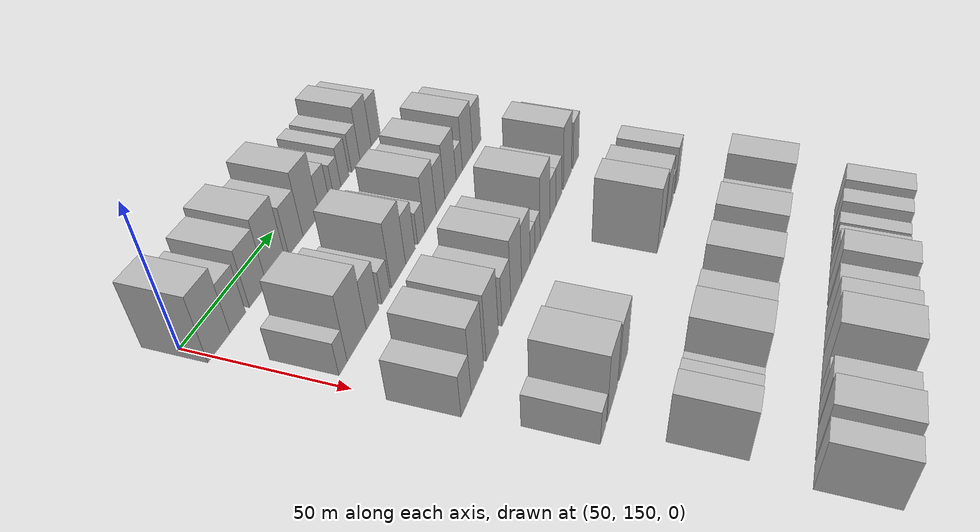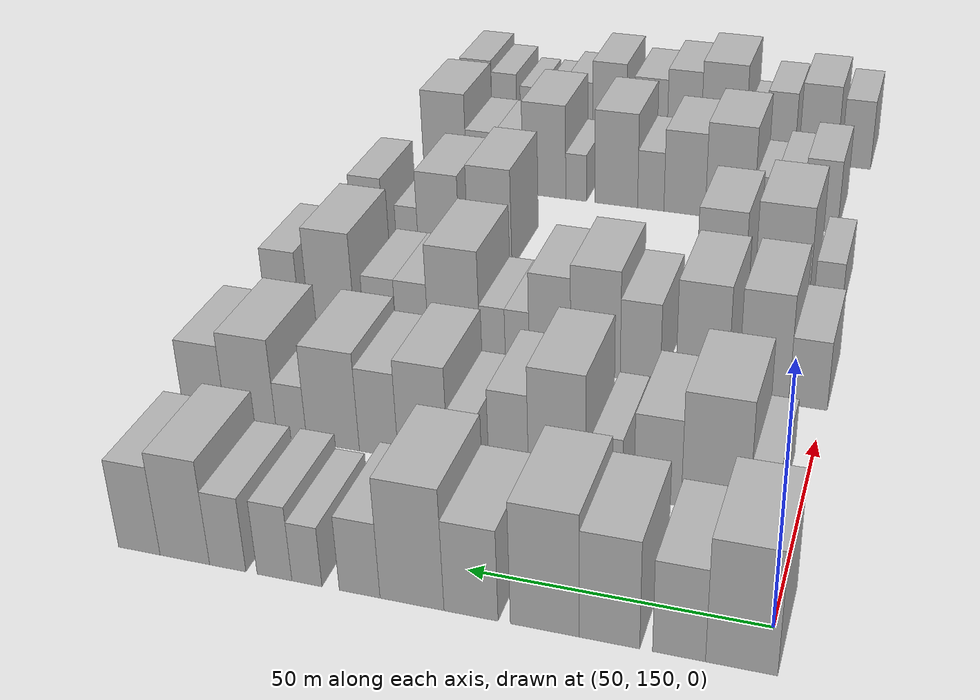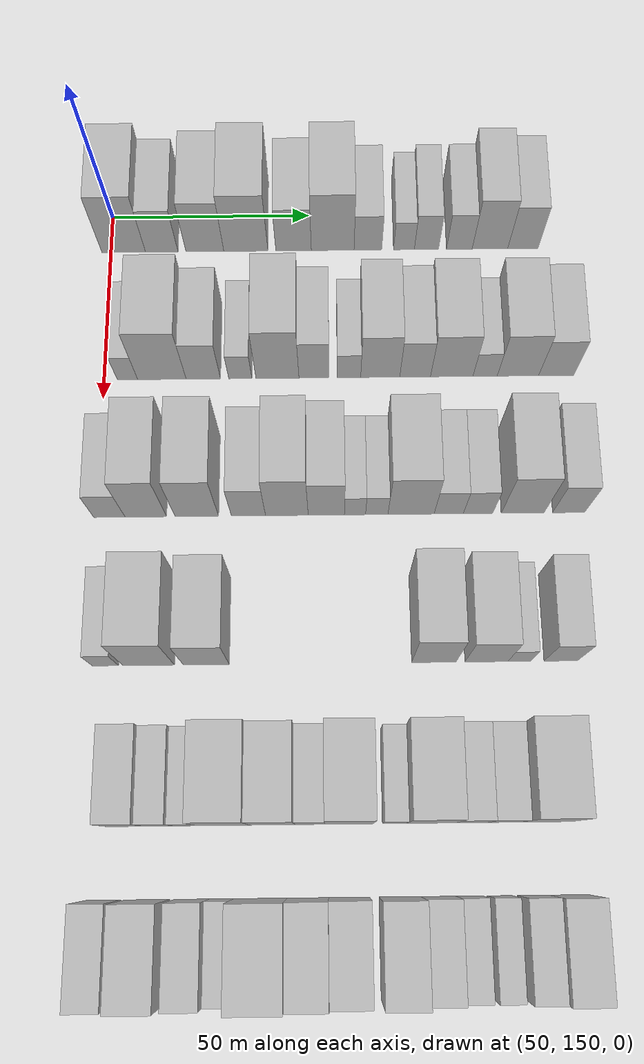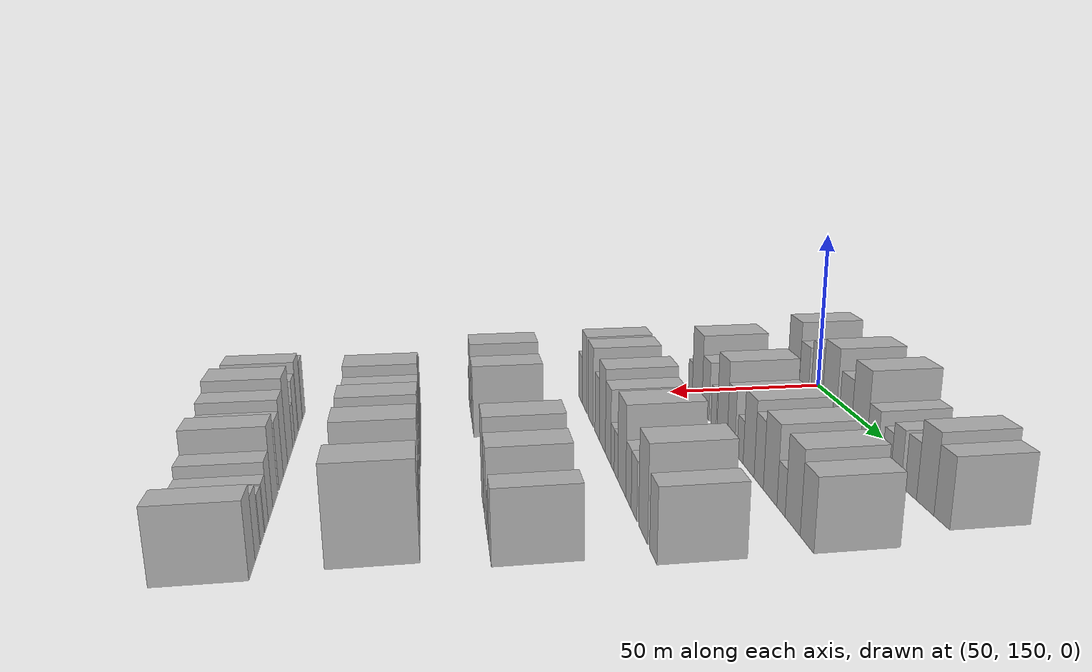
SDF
<sdf version="1.6">
 <world name="default">
  <model name="building_81">
   <static>1</static>
   <pose>50.0000 153.2220 0 0.000000 0.000000 0.000000</pose>
   <link name="link">
    <pose>0 0 12.00 0 0 0</pose>
    <collision name="collision"><geometry><box><size>20.0000 10.9884 24.0000</size></box></geometry></collision>
    <visual name="visual">
     <cast_shadows>0</cast_shadows>
     <geometry><box><size>20.0000 10.9884 24.0000</size></box></geometry>
     <material>
      <script>
       <uri>model://HANNAS_wall/materials/scripts</uri>
       <uri>model://HANNAS_wall/materials/textures</uri>
       <name>vrc/HANNAS_wall</name>
      </script>
     </material>
    </visual>
   </link>
  </model>
  <model name="building_82">
   <static>1</static>
   <pose>50.0000 162.8130 0 0.000000 0.000000 0.000000</pose>
   <link name="link">
    <pose>0 0 9.00 0 0 0</pose>
    <collision name="collision"><geometry><box><size>20.0000 8.1934 18.0000</size></box></geometry></collision>
    <visual name="visual">
     <cast_shadows>0</cast_shadows>
     <geometry><box><size>20.0000 8.1934 18.0000</size></box></geometry>
     <material>
      <script>
       <uri>model://HANNAS_wall/materials/scripts</uri>
       <uri>model://HANNAS_wall/materials/textures</uri>
       <name>vrc/HANNAS_wall</name>
      </script>
     </material>
    </visual>
   </link>
  </model>
  <model name="building_83">
   <static>1</static>
   <pose>50.0000 173.6807 0 0.000000 0.000000 0.000000</pose>
   <link name="link">
    <pose>0 0 10.50 0 0 0</pose>
    <collision name="collision"><geometry><box><size>20.0000 9.5420 21.0000</size></box></geometry></collision>
    <visual name="visual">
     <cast_shadows>0</cast_shadows>
     <geometry><box><size>20.0000 9.5420 21.0000</size></box></geometry>
     <material>
      <script>
       <uri>model://HANNAS_wall/materials/scripts</uri>
       <uri>model://HANNAS_wall/materials/textures</uri>
       <name>vrc/HANNAS_wall</name>
      </script>
     </material>
    </visual>
   </link>
  </model>
  <model name="building_84">
   <static>1</static>
   <pose>50.0000 184.0219 0 0.000000 0.000000 0.000000</pose>
   <link name="link">
    <pose>0 0 12.00 0 0 0</pose>
    <collision name="collision"><geometry><box><size>20.0000 11.1404 24.0000</size></box></geometry></collision>
    <visual name="visual">
     <cast_shadows>0</cast_shadows>
     <geometry><box><size>20.0000 11.1404 24.0000</size></box></geometry>
     <material>
      <script>
       <uri>model://HANNAS_wall/materials/scripts</uri>
       <uri>model://HANNAS_wall/materials/textures</uri>
       <name>vrc/HANNAS_wall</name>
      </script>
     </material>
    </visual>
   </link>
  </model>
  <model name="building_85">
   <static>1</static>
   <pose>50.0000 196.0605 0 0.000000 0.000000 0.000000</pose>
   <link name="link">
    <pose>0 0 9.00 0 0 0</pose>
    <collision name="collision"><geometry><box><size>20.0000 8.9368 18.0000</size></box></geometry></collision>
    <visual name="visual">
     <cast_shadows>0</cast_shadows>
     <geometry><box><size>20.0000 8.9368 18.0000</size></box></geometry>
     <material>
      <script>
       <uri>model://HANNAS_wall/materials/scripts</uri>
       <uri>model://HANNAS_wall/materials/textures</uri>
       <name>vrc/HANNAS_wall</name>
      </script>
     </material>
    </visual>
   </link>
  </model>
  <model name="building_86">
   <static>1</static>
   <pose>50.0000 205.9209 0 0.000000 0.000000 0.000000</pose>
   <link name="link">
    <pose>0 0 12.00 0 0 0</pose>
    <collision name="collision"><geometry><box><size>20.0000 10.7838 24.0000</size></box></geometry></collision>
    <visual name="visual">
     <cast_shadows>0</cast_shadows>
     <geometry><box><size>20.0000 10.7838 24.0000</size></box></geometry>
     <material>
      <script>
       <uri>model://HANNAS_wall/materials/scripts</uri>
       <uri>model://HANNAS_wall/materials/textures</uri>
       <name>vrc/HANNAS_wall</name>
      </script>
     </material>
    </visual>
   </link>
  </model>
  <model name="building_87">
   <static>1</static>
   <pose>50.0000 214.8019 0 0.000000 0.000000 0.000000</pose>
   <link name="link">
    <pose>0 0 7.50 0 0 0</pose>
    <collision name="collision"><geometry><box><size>20.0000 6.9783 15.0000</size></box></geometry></collision>
    <visual name="visual">
     <cast_shadows>0</cast_shadows>
     <geometry><box><size>20.0000 6.9783 15.0000</size></box></geometry>
     <material>
      <script>
       <uri>model://HANNAS_wall/materials/scripts</uri>
       <uri>model://HANNAS_wall/materials/textures</uri>
       <name>vrc/HANNAS_wall</name>
      </script>
     </material>
    </visual>
   </link>
  </model>
  <model name="building_88">
   <static>1</static>
   <pose>50.0000 223.9112 0 0.000000 0.000000 0.000000</pose>
   <link name="link">
    <pose>0 0 6.00 0 0 0</pose>
    <collision name="collision"><geometry><box><size>20.0000 5.2402 12.0000</size></box></geometry></collision>
    <visual name="visual">
     <cast_shadows>0</cast_shadows>
     <geometry><box><size>20.0000 5.2402 12.0000</size></box></geometry>
     <material>
      <script>
       <uri>model://HANNAS_wall/materials/scripts</uri>
       <uri>model://HANNAS_wall/materials/textures</uri>
       <name>vrc/HANNAS_wall</name>
      </script>
     </material>
    </visual>
   </link>
  </model>
  <model name="building_89">
   <static>1</static>
   <pose>50.0000 229.5889 0 0.000000 0.000000 0.000000</pose>
   <link name="link">
    <pose>0 0 7.50 0 0 0</pose>
    <collision name="collision"><geometry><box><size>20.0000 6.1152 15.0000</size></box></geometry></collision>
    <visual name="visual">
     <cast_shadows>0</cast_shadows>
     <geometry><box><size>20.0000 6.1152 15.0000</size></box></geometry>
     <material>
      <script>
       <uri>model://HANNAS_wall/materials/scripts</uri>
       <uri>model://HANNAS_wall/materials/textures</uri>
       <name>vrc/HANNAS_wall</name>
      </script>
     </material>
    </visual>
   </link>
  </model>
  <model name="building_90">
   <static>1</static>
   <pose>50.0000 237.8945 0 0.000000 0.000000 0.000000</pose>
   <link name="link">
    <pose>0 0 7.50 0 0 0</pose>
    <collision name="collision"><geometry><box><size>20.0000 6.4959 15.0000</size></box></geometry></collision>
    <visual name="visual">
     <cast_shadows>0</cast_shadows>
     <geometry><box><size>20.0000 6.4959 15.0000</size></box></geometry>
     <material>
      <script>
       <uri>model://HANNAS_wall/materials/scripts</uri>
       <uri>model://HANNAS_wall/materials/textures</uri>
       <name>vrc/HANNAS_wall</name>
      </script>
     </material>
    </visual>
   </link>
  </model>
  <model name="building_91">
   <static>1</static>
   <pose>50.0000 245.6373 0 0.000000 0.000000 0.000000</pose>
   <link name="link">
    <pose>0 0 10.50 0 0 0</pose>
    <collision name="collision"><geometry><box><size>20.0000 8.9898 21.0000</size></box></geometry></collision>
    <visual name="visual">
     <cast_shadows>0</cast_shadows>
     <geometry><box><size>20.0000 8.9898 21.0000</size></box></geometry>
     <material>
      <script>
       <uri>model://HANNAS_wall/materials/scripts</uri>
       <uri>model://HANNAS_wall/materials/textures</uri>
       <name>vrc/HANNAS_wall</name>
      </script>
     </material>
    </visual>
   </link>
  </model>
  <model name="building_92">
   <static>1</static>
   <pose>50.0000 253.9546 0 0.000000 0.000000 0.000000</pose>
   <link name="link">
    <pose>0 0 9.00 0 0 0</pose>
    <collision name="collision"><geometry><box><size>20.0000 7.6448 18.0000</size></box></geometry></collision>
    <visual name="visual">
     <cast_shadows>0</cast_shadows>
     <geometry><box><size>20.0000 7.6448 18.0000</size></box></geometry>
     <material>
      <script>
       <uri>model://HANNAS_wall/materials/scripts</uri>
       <uri>model://HANNAS_wall/materials/textures</uri>
       <name>vrc/HANNAS_wall</name>
      </script>
     </material>
    </visual>
   </link>
  </model>
  <model name="building_206">
   <static>1</static>
   <pose>85.0000 155.6818 0 0.000000 0.000000 0.000000</pose>
   <link name="link">
    <pose>0 0 6.00 0 0 0</pose>
    <collision name="collision"><geometry><box><size>20.0000 4.9377 12.0000</size></box></geometry></collision>
    <visual name="visual">
     <cast_shadows>0</cast_shadows>
     <geometry><box><size>20.0000 4.9377 12.0000</size></box></geometry>
     <material>
      <script>
       <uri>model://HANNAS_wall/materials/scripts</uri>
       <uri>model://HANNAS_wall/materials/textures</uri>
       <name>vrc/HANNAS_wall</name>
      </script>
     </material>
    </visual>
   </link>
  </model>
  <model name="building_207">
   <static>1</static>
   <pose>85.0000 164.0444 0 0.000000 0.000000 0.000000</pose>
   <link name="link">
    <pose>0 0 12.00 0 0 0</pose>
    <collision name="collision"><geometry><box><size>20.0000 11.7876 24.0000</size></box></geometry></collision>
    <visual name="visual">
     <cast_shadows>0</cast_shadows>
     <geometry><box><size>20.0000 11.7876 24.0000</size></box></geometry>
     <material>
      <script>
       <uri>model://HANNAS_wall/materials/scripts</uri>
       <uri>model://HANNAS_wall/materials/textures</uri>
       <name>vrc/HANNAS_wall</name>
      </script>
     </material>
    </visual>
   </link>
  </model>
  <model name="building_208">
   <static>1</static>
   <pose>85.0000 174.1142 0 0.000000 0.000000 0.000000</pose>
   <link name="link">
    <pose>0 0 9.00 0 0 0</pose>
    <collision name="collision"><geometry><box><size>20.0000 8.3519 18.0000</size></box></geometry></collision>
    <visual name="visual">
     <cast_shadows>0</cast_shadows>
     <geometry><box><size>20.0000 8.3519 18.0000</size></box></geometry>
     <material>
      <script>
       <uri>model://HANNAS_wall/materials/scripts</uri>
       <uri>model://HANNAS_wall/materials/textures</uri>
       <name>vrc/HANNAS_wall</name>
      </script>
     </material>
    </visual>
   </link>
  </model>
  <model name="building_209">
   <static>1</static>
   <pose>85.0000 183.1046 0 0.000000 0.000000 0.000000</pose>
   <link name="link">
    <pose>0 0 6.00 0 0 0</pose>
    <collision name="collision"><geometry><box><size>20.0000 5.6288 12.0000</size></box></geometry></collision>
    <visual name="visual">
     <cast_shadows>0</cast_shadows>
     <geometry><box><size>20.0000 5.6288 12.0000</size></box></geometry>
     <material>
      <script>
       <uri>model://HANNAS_wall/materials/scripts</uri>
       <uri>model://HANNAS_wall/materials/textures</uri>
       <name>vrc/HANNAS_wall</name>
      </script>
     </material>
    </visual>
   </link>
  </model>
  <model name="building_210">
   <static>1</static>
   <pose>85.0000 192.1411 0 0.000000 0.000000 0.000000</pose>
   <link name="link">
    <pose>0 0 12.00 0 0 0</pose>
    <collision name="collision"><geometry><box><size>20.0000 10.4443 24.0000</size></box></geometry></collision>
    <visual name="visual">
     <cast_shadows>0</cast_shadows>
     <geometry><box><size>20.0000 10.4443 24.0000</size></box></geometry>
     <material>
      <script>
       <uri>model://HANNAS_wall/materials/scripts</uri>
       <uri>model://HANNAS_wall/materials/textures</uri>
       <name>vrc/HANNAS_wall</name>
      </script>
     </material>
    </visual>
   </link>
  </model>
  <model name="building_211">
   <static>1</static>
   <pose>85.0000 201.0254 0 0.000000 0.000000 0.000000</pose>
   <link name="link">
    <pose>0 0 9.00 0 0 0</pose>
    <collision name="collision"><geometry><box><size>20.0000 7.3243 18.0000</size></box></geometry></collision>
    <visual name="visual">
     <cast_shadows>0</cast_shadows>
     <geometry><box><size>20.0000 7.3243 18.0000</size></box></geometry>
     <material>
      <script>
       <uri>model://HANNAS_wall/materials/scripts</uri>
       <uri>model://HANNAS_wall/materials/textures</uri>
       <name>vrc/HANNAS_wall</name>
      </script>
     </material>
    </visual>
   </link>
  </model>
  <model name="building_212">
   <static>1</static>
   <pose>85.0000 209.5269 0 0.000000 0.000000 0.000000</pose>
   <link name="link">
    <pose>0 0 6.00 0 0 0</pose>
    <collision name="collision"><geometry><box><size>20.0000 5.6787 12.0000</size></box></geometry></collision>
    <visual name="visual">
     <cast_shadows>0</cast_shadows>
     <geometry><box><size>20.0000 5.6787 12.0000</size></box></geometry>
     <material>
      <script>
       <uri>model://HANNAS_wall/materials/scripts</uri>
       <uri>model://HANNAS_wall/materials/textures</uri>
       <name>vrc/HANNAS_wall</name>
      </script>
     </material>
    </visual>
   </link>
  </model>
  <model name="building_213">
   <static>1</static>
   <pose>85.0000 217.1181 0 0.000000 0.000000 0.000000</pose>
   <link name="link">
    <pose>0 0 10.50 0 0 0</pose>
    <collision name="collision"><geometry><box><size>20.0000 9.5038 21.0000</size></box></geometry></collision>
    <visual name="visual">
     <cast_shadows>0</cast_shadows>
     <geometry><box><size>20.0000 9.5038 21.0000</size></box></geometry>
     <material>
      <script>
       <uri>model://HANNAS_wall/materials/scripts</uri>
       <uri>model://HANNAS_wall/materials/textures</uri>
       <name>vrc/HANNAS_wall</name>
      </script>
     </material>
    </visual>
   </link>
  </model>
  <model name="building_214">
   <static>1</static>
   <pose>85.0000 225.6183 0 0.000000 0.000000 0.000000</pose>
   <link name="link">
    <pose>0 0 9.00 0 0 0</pose>
    <collision name="collision"><geometry><box><size>20.0000 7.4966 18.0000</size></box></geometry></collision>
    <visual name="visual">
     <cast_shadows>0</cast_shadows>
     <geometry><box><size>20.0000 7.4966 18.0000</size></box></geometry>
     <material>
      <script>
       <uri>model://HANNAS_wall/materials/scripts</uri>
       <uri>model://HANNAS_wall/materials/textures</uri>
       <name>vrc/HANNAS_wall</name>
      </script>
     </material>
    </visual>
   </link>
  </model>
  <model name="building_215">
   <static>1</static>
   <pose>85.0000 234.5331 0 0.000000 0.000000 0.000000</pose>
   <link name="link">
    <pose>0 0 10.50 0 0 0</pose>
    <collision name="collision"><geometry><box><size>20.0000 10.3330 21.0000</size></box></geometry></collision>
    <visual name="visual">
     <cast_shadows>0</cast_shadows>
     <geometry><box><size>20.0000 10.3330 21.0000</size></box></geometry>
     <material>
      <script>
       <uri>model://HANNAS_wall/materials/scripts</uri>
       <uri>model://HANNAS_wall/materials/textures</uri>
       <name>vrc/HANNAS_wall</name>
      </script>
     </material>
    </visual>
   </link>
  </model>
  <model name="building_216">
   <static>1</static>
   <pose>85.0000 242.6509 0 0.000000 0.000000 0.000000</pose>
   <link name="link">
    <pose>0 0 6.00 0 0 0</pose>
    <collision name="collision"><geometry><box><size>20.0000 5.9025 12.0000</size></box></geometry></collision>
    <visual name="visual">
     <cast_shadows>0</cast_shadows>
     <geometry><box><size>20.0000 5.9025 12.0000</size></box></geometry>
     <material>
      <script>
       <uri>model://HANNAS_wall/materials/scripts</uri>
       <uri>model://HANNAS_wall/materials/textures</uri>
       <name>vrc/HANNAS_wall</name>
      </script>
     </material>
    </visual>
   </link>
  </model>
  <model name="building_217">
   <static>1</static>
   <pose>85.0000 250.6484 0 0.000000 0.000000 0.000000</pose>
   <link name="link">
    <pose>0 0 10.50 0 0 0</pose>
    <collision name="collision"><geometry><box><size>20.0000 10.0925 21.0000</size></box></geometry></collision>
    <visual name="visual">
     <cast_shadows>0</cast_shadows>
     <geometry><box><size>20.0000 10.0925 21.0000</size></box></geometry>
     <material>
      <script>
       <uri>model://HANNAS_wall/materials/scripts</uri>
       <uri>model://HANNAS_wall/materials/textures</uri>
       <name>vrc/HANNAS_wall</name>
      </script>
     </material>
    </visual>
   </link>
  </model>
  <model name="building_218">
   <static>1</static>
   <pose>85.0000 259.9752 0 0.000000 0.000000 0.000000</pose>
   <link name="link">
    <pose>0 0 9.00 0 0 0</pose>
    <collision name="collision"><geometry><box><size>20.0000 8.5610 18.0000</size></box></geometry></collision>
    <visual name="visual">
     <cast_shadows>0</cast_shadows>
     <geometry><box><size>20.0000 8.5610 18.0000</size></box></geometry>
     <material>
      <script>
       <uri>model://HANNAS_wall/materials/scripts</uri>
       <uri>model://HANNAS_wall/materials/textures</uri>
       <name>vrc/HANNAS_wall</name>
      </script>
     </material>
    </visual>
   </link>
  </model>
  <model name="building_336">
   <static>1</static>
   <pose>120.0000 152.9623 0 0.000000 0.000000 0.000000</pose>
   <link name="link">
    <pose>0 0 7.50 0 0 0</pose>
    <collision name="collision"><geometry><box><size>20.0000 7.3372 15.0000</size></box></geometry></collision>
    <visual name="visual">
     <cast_shadows>0</cast_shadows>
     <geometry><box><size>20.0000 7.3372 15.0000</size></box></geometry>
     <material>
      <script>
       <uri>model://HANNAS_wall/materials/scripts</uri>
       <uri>model://HANNAS_wall/materials/textures</uri>
       <name>vrc/HANNAS_wall</name>
      </script>
     </material>
    </visual>
   </link>
  </model>
  <model name="building_337">
   <static>1</static>
   <pose>120.0000 161.4760 0 0.000000 0.000000 0.000000</pose>
   <link name="link">
    <pose>0 0 12.00 0 0 0</pose>
    <collision name="collision"><geometry><box><size>20.0000 9.6903 24.0000</size></box></geometry></collision>
    <visual name="visual">
     <cast_shadows>0</cast_shadows>
     <geometry><box><size>20.0000 9.6903 24.0000</size></box></geometry>
     <material>
      <script>
       <uri>model://HANNAS_wall/materials/scripts</uri>
       <uri>model://HANNAS_wall/materials/textures</uri>
       <name>vrc/HANNAS_wall</name>
      </script>
     </material>
    </visual>
   </link>
  </model>
  <model name="building_338">
   <static>1</static>
   <pose>120.0000 173.4076 0 0.000000 0.000000 0.000000</pose>
   <link name="link">
    <pose>0 0 12.00 0 0 0</pose>
    <collision name="collision"><geometry><box><size>20.0000 10.1729 24.0000</size></box></geometry></collision>
    <visual name="visual">
     <cast_shadows>0</cast_shadows>
     <geometry><box><size>20.0000 10.1729 24.0000</size></box></geometry>
     <material>
      <script>
       <uri>model://HANNAS_wall/materials/scripts</uri>
       <uri>model://HANNAS_wall/materials/textures</uri>
       <name>vrc/HANNAS_wall</name>
      </script>
     </material>
    </visual>
   </link>
  </model>
  <model name="building_339">
   <static>1</static>
   <pose>120.0000 185.4932 0 0.000000 0.000000 0.000000</pose>
   <link name="link">
    <pose>0 0 9.00 0 0 0</pose>
    <collision name="collision"><geometry><box><size>20.0000 7.9982 18.0000</size></box></geometry></collision>
    <visual name="visual">
     <cast_shadows>0</cast_shadows>
     <geometry><box><size>20.0000 7.9982 18.0000</size></box></geometry>
     <material>
      <script>
       <uri>model://HANNAS_wall/materials/scripts</uri>
       <uri>model://HANNAS_wall/materials/textures</uri>
       <name>vrc/HANNAS_wall</name>
      </script>
     </material>
    </visual>
   </link>
  </model>
  <model name="building_340">
   <static>1</static>
   <pose>120.0000 194.4789 0 0.000000 0.000000 0.000000</pose>
   <link name="link">
    <pose>0 0 12.00 0 0 0</pose>
    <collision name="collision"><geometry><box><size>20.0000 9.9731 24.0000</size></box></geometry></collision>
    <visual name="visual">
     <cast_shadows>0</cast_shadows>
     <geometry><box><size>20.0000 9.9731 24.0000</size></box></geometry>
     <material>
      <script>
       <uri>model://HANNAS_wall/materials/scripts</uri>
       <uri>model://HANNAS_wall/materials/textures</uri>
       <name>vrc/HANNAS_wall</name>
      </script>
     </material>
    </visual>
   </link>
  </model>
  <model name="building_341">
   <static>1</static>
   <pose>120.0000 203.6985 0 0.000000 0.000000 0.000000</pose>
   <link name="link">
    <pose>0 0 10.50 0 0 0</pose>
    <collision name="collision"><geometry><box><size>20.0000 8.4661 21.0000</size></box></geometry></collision>
    <visual name="visual">
     <cast_shadows>0</cast_shadows>
     <geometry><box><size>20.0000 8.4661 21.0000</size></box></geometry>
     <material>
      <script>
       <uri>model://HANNAS_wall/materials/scripts</uri>
       <uri>model://HANNAS_wall/materials/textures</uri>
       <name>vrc/HANNAS_wall</name>
      </script>
     </material>
    </visual>
   </link>
  </model>
  <model name="building_342">
   <static>1</static>
   <pose>120.0000 210.4045 0 0.000000 0.000000 0.000000</pose>
   <link name="link">
    <pose>0 0 6.00 0 0 0</pose>
    <collision name="collision"><geometry><box><size>20.0000 4.9459 12.0000</size></box></geometry></collision>
    <visual name="visual">
     <cast_shadows>0</cast_shadows>
     <geometry><box><size>20.0000 4.9459 12.0000</size></box></geometry>
     <material>
      <script>
       <uri>model://HANNAS_wall/materials/scripts</uri>
       <uri>model://HANNAS_wall/materials/textures</uri>
       <name>vrc/HANNAS_wall</name>
      </script>
     </material>
    </visual>
   </link>
  </model>
  <model name="building_343">
   <static>1</static>
   <pose>120.0000 215.5009 0 0.000000 0.000000 0.000000</pose>
   <link name="link">
    <pose>0 0 6.00 0 0 0</pose>
    <collision name="collision"><geometry><box><size>20.0000 5.2469 12.0000</size></box></geometry></collision>
    <visual name="visual">
     <cast_shadows>0</cast_shadows>
     <geometry><box><size>20.0000 5.2469 12.0000</size></box></geometry>
     <material>
      <script>
       <uri>model://HANNAS_wall/materials/scripts</uri>
       <uri>model://HANNAS_wall/materials/textures</uri>
       <name>vrc/HANNAS_wall</name>
      </script>
     </material>
    </visual>
   </link>
  </model>
  <model name="building_344">
   <static>1</static>
   <pose>120.0000 223.5381 0 0.000000 0.000000 0.000000</pose>
   <link name="link">
    <pose>0 0 12.00 0 0 0</pose>
    <collision name="collision"><geometry><box><size>20.0000 10.8276 24.0000</size></box></geometry></collision>
    <visual name="visual">
     <cast_shadows>0</cast_shadows>
     <geometry><box><size>20.0000 10.8276 24.0000</size></box></geometry>
     <material>
      <script>
       <uri>model://HANNAS_wall/materials/scripts</uri>
       <uri>model://HANNAS_wall/materials/textures</uri>
       <name>vrc/HANNAS_wall</name>
      </script>
     </material>
    </visual>
   </link>
  </model>
  <model name="building_345">
   <static>1</static>
   <pose>120.0000 232.3800 0 0.000000 0.000000 0.000000</pose>
   <link name="link">
    <pose>0 0 7.50 0 0 0</pose>
    <collision name="collision"><geometry><box><size>20.0000 6.8562 15.0000</size></box></geometry></collision>
    <visual name="visual">
     <cast_shadows>0</cast_shadows>
     <geometry><box><size>20.0000 6.8562 15.0000</size></box></geometry>
     <material>
      <script>
       <uri>model://HANNAS_wall/materials/scripts</uri>
       <uri>model://HANNAS_wall/materials/textures</uri>
       <name>vrc/HANNAS_wall</name>
      </script>
     </material>
    </visual>
   </link>
  </model>
  <model name="building_346">
   <static>1</static>
   <pose>120.0000 239.2468 0 0.000000 0.000000 0.000000</pose>
   <link name="link">
    <pose>0 0 7.50 0 0 0</pose>
    <collision name="collision"><geometry><box><size>20.0000 6.8774 15.0000</size></box></geometry></collision>
    <visual name="visual">
     <cast_shadows>0</cast_shadows>
     <geometry><box><size>20.0000 6.8774 15.0000</size></box></geometry>
     <material>
      <script>
       <uri>model://HANNAS_wall/materials/scripts</uri>
       <uri>model://HANNAS_wall/materials/textures</uri>
       <name>vrc/HANNAS_wall</name>
      </script>
     </material>
    </visual>
   </link>
  </model>
  <model name="building_347">
   <static>1</static>
   <pose>120.0000 249.7143 0 0.000000 0.000000 0.000000</pose>
   <link name="link">
    <pose>0 0 12.00 0 0 0</pose>
    <collision name="collision"><geometry><box><size>20.0000 10.0576 24.0000</size></box></geometry></collision>
    <visual name="visual">
     <cast_shadows>0</cast_shadows>
     <geometry><box><size>20.0000 10.0576 24.0000</size></box></geometry>
     <material>
      <script>
       <uri>model://HANNAS_wall/materials/scripts</uri>
       <uri>model://HANNAS_wall/materials/textures</uri>
       <name>vrc/HANNAS_wall</name>
      </script>
     </material>
    </visual>
   </link>
  </model>
  <model name="building_348">
   <static>1</static>
   <pose>120.0000 260.5204 0 0.000000 0.000000 0.000000</pose>
   <link name="link">
    <pose>0 0 9.00 0 0 0</pose>
    <collision name="collision"><geometry><box><size>20.0000 7.5548 18.0000</size></box></geometry></collision>
    <visual name="visual">
     <cast_shadows>0</cast_shadows>
     <geometry><box><size>20.0000 7.5548 18.0000</size></box></geometry>
     <material>
      <script>
       <uri>model://HANNAS_wall/materials/scripts</uri>
       <uri>model://HANNAS_wall/materials/textures</uri>
       <name>vrc/HANNAS_wall</name>
      </script>
     </material>
    </visual>
   </link>
  </model>
  <model name="building_466">
   <static>1</static>
   <pose>155.0000 153.7375 0 0.000000 0.000000 0.000000</pose>
   <link name="link">
    <pose>0 0 6.00 0 0 0</pose>
    <collision name="collision"><geometry><box><size>20.0000 5.9404 12.0000</size></box></geometry></collision>
    <visual name="visual">
     <cast_shadows>0</cast_shadows>
     <geometry><box><size>20.0000 5.9404 12.0000</size></box></geometry>
     <material>
      <script>
       <uri>model://HANNAS_wall/materials/scripts</uri>
       <uri>model://HANNAS_wall/materials/textures</uri>
       <name>vrc/HANNAS_wall</name>
      </script>
     </material>
    </visual>
   </link>
  </model>
  <model name="building_467">
   <static>1</static>
   <pose>155.0000 163.4805 0 0.000000 0.000000 0.000000</pose>
   <link name="link">
    <pose>0 0 12.00 0 0 0</pose>
    <collision name="collision"><geometry><box><size>20.0000 11.5457 24.0000</size></box></geometry></collision>
    <visual name="visual">
     <cast_shadows>0</cast_shadows>
     <geometry><box><size>20.0000 11.5457 24.0000</size></box></geometry>
     <material>
      <script>
       <uri>model://HANNAS_wall/materials/scripts</uri>
       <uri>model://HANNAS_wall/materials/textures</uri>
       <name>vrc/HANNAS_wall</name>
      </script>
     </material>
    </visual>
   </link>
  </model>
  <model name="building_468">
   <static>1</static>
   <pose>155.0000 176.4269 0 0.000000 0.000000 0.000000</pose>
   <link name="link">
    <pose>0 0 10.50 0 0 0</pose>
    <collision name="collision"><geometry><box><size>20.0000 10.3470 21.0000</size></box></geometry></collision>
    <visual name="visual">
     <cast_shadows>0</cast_shadows>
     <geometry><box><size>20.0000 10.3470 21.0000</size></box></geometry>
     <material>
      <script>
       <uri>model://HANNAS_wall/materials/scripts</uri>
       <uri>model://HANNAS_wall/materials/textures</uri>
       <name>vrc/HANNAS_wall</name>
      </script>
     </material>
    </visual>
   </link>
  </model>
  <model name="building_469">
   <static>1</static>
   <pose>155.0000 227.6093 0 0.000000 0.000000 0.000000</pose>
   <link name="link">
    <pose>0 0 12.00 0 0 0</pose>
    <collision name="collision"><geometry><box><size>20.0000 10.0060 24.0000</size></box></geometry></collision>
    <visual name="visual">
     <cast_shadows>0</cast_shadows>
     <geometry><box><size>20.0000 10.0060 24.0000</size></box></geometry>
     <material>
      <script>
       <uri>model://HANNAS_wall/materials/scripts</uri>
       <uri>model://HANNAS_wall/materials/textures</uri>
       <name>vrc/HANNAS_wall</name>
      </script>
     </material>
    </visual>
   </link>
  </model>
  <model name="building_470">
   <static>1</static>
   <pose>155.0000 239.4523 0 0.000000 0.000000 0.000000</pose>
   <link name="link">
    <pose>0 0 10.50 0 0 0</pose>
    <collision name="collision"><geometry><box><size>20.0000 9.6800 21.0000</size></box></geometry></collision>
    <visual name="visual">
     <cast_shadows>0</cast_shadows>
     <geometry><box><size>20.0000 9.6800 21.0000</size></box></geometry>
     <material>
      <script>
       <uri>model://HANNAS_wall/materials/scripts</uri>
       <uri>model://HANNAS_wall/materials/textures</uri>
       <name>vrc/HANNAS_wall</name>
      </script>
     </material>
    </visual>
   </link>
  </model>
  <model name="building_471">
   <static>1</static>
   <pose>155.0000 246.8673 0 0.000000 0.000000 0.000000</pose>
   <link name="link">
    <pose>0 0 6.00 0 0 0</pose>
    <collision name="collision"><geometry><box><size>20.0000 5.1501 12.0000</size></box></geometry></collision>
    <visual name="visual">
     <cast_shadows>0</cast_shadows>
     <geometry><box><size>20.0000 5.1501 12.0000</size></box></geometry>
     <material>
      <script>
       <uri>model://HANNAS_wall/materials/scripts</uri>
       <uri>model://HANNAS_wall/materials/textures</uri>
       <name>vrc/HANNAS_wall</name>
      </script>
     </material>
    </visual>
   </link>
  </model>
  <model name="building_472">
   <static>1</static>
   <pose>155.0000 256.2350 0 0.000000 0.000000 0.000000</pose>
   <link name="link">
    <pose>0 0 9.00 0 0 0</pose>
    <collision name="collision"><geometry><box><size>20.0000 7.5853 18.0000</size></box></geometry></collision>
    <visual name="visual">
     <cast_shadows>0</cast_shadows>
     <geometry><box><size>20.0000 7.5853 18.0000</size></box></geometry>
     <material>
      <script>
       <uri>model://HANNAS_wall/materials/scripts</uri>
       <uri>model://HANNAS_wall/materials/textures</uri>
       <name>vrc/HANNAS_wall</name>
      </script>
     </material>
    </visual>
   </link>
  </model>
  <model name="building_592">
   <static>1</static>
   <pose>190.0000 159.9021 0 0.000000 0.000000 0.000000</pose>
   <link name="link">
    <pose>0 0 9.00 0 0 0</pose>
    <collision name="collision"><geometry><box><size>20.0000 7.9876 18.0000</size></box></geometry></collision>
    <visual name="visual">
     <cast_shadows>0</cast_shadows>
     <geometry><box><size>20.0000 7.9876 18.0000</size></box></geometry>
     <material>
      <script>
       <uri>model://HANNAS_wall/materials/scripts</uri>
       <uri>model://HANNAS_wall/materials/textures</uri>
       <name>vrc/HANNAS_wall</name>
      </script>
     </material>
    </visual>
   </link>
  </model>
  <model name="building_593">
   <static>1</static>
   <pose>190.0000 167.0114 0 0.000000 0.000000 0.000000</pose>
   <link name="link">
    <pose>0 0 7.50 0 0 0</pose>
    <collision name="collision"><geometry><box><size>20.0000 6.2309 15.0000</size></box></geometry></collision>
    <visual name="visual">
     <cast_shadows>0</cast_shadows>
     <geometry><box><size>20.0000 6.2309 15.0000</size></box></geometry>
     <material>
      <script>
       <uri>model://HANNAS_wall/materials/scripts</uri>
       <uri>model://HANNAS_wall/materials/textures</uri>
       <name>vrc/HANNAS_wall</name>
      </script>
     </material>
    </visual>
   </link>
  </model>
  <model name="building_594">
   <static>1</static>
   <pose>190.0000 172.6888 0 0.000000 0.000000 0.000000</pose>
   <link name="link">
    <pose>0 0 6.00 0 0 0</pose>
    <collision name="collision"><geometry><box><size>20.0000 5.1240 12.0000</size></box></geometry></collision>
    <visual name="visual">
     <cast_shadows>0</cast_shadows>
     <geometry><box><size>20.0000 5.1240 12.0000</size></box></geometry>
     <material>
      <script>
       <uri>model://HANNAS_wall/materials/scripts</uri>
       <uri>model://HANNAS_wall/materials/textures</uri>
       <name>vrc/HANNAS_wall</name>
      </script>
     </material>
    </visual>
   </link>
  </model>
  <model name="building_595">
   <static>1</static>
   <pose>190.0000 180.9256 0 0.000000 0.000000 0.000000</pose>
   <link name="link">
    <pose>0 0 12.00 0 0 0</pose>
    <collision name="collision"><geometry><box><size>20.0000 11.3497 24.0000</size></box></geometry></collision>
    <visual name="visual">
     <cast_shadows>0</cast_shadows>
     <geometry><box><size>20.0000 11.3497 24.0000</size></box></geometry>
     <material>
      <script>
       <uri>model://HANNAS_wall/materials/scripts</uri>
       <uri>model://HANNAS_wall/materials/textures</uri>
       <name>vrc/HANNAS_wall</name>
      </script>
     </material>
    </visual>
   </link>
  </model>
  <model name="building_596">
   <static>1</static>
   <pose>190.0000 191.5199 0 0.000000 0.000000 0.000000</pose>
   <link name="link">
    <pose>0 0 10.50 0 0 0</pose>
    <collision name="collision"><geometry><box><size>20.0000 9.8390 21.0000</size></box></geometry></collision>
    <visual name="visual">
     <cast_shadows>0</cast_shadows>
     <geometry><box><size>20.0000 9.8390 21.0000</size></box></geometry>
     <material>
      <script>
       <uri>model://HANNAS_wall/materials/scripts</uri>
       <uri>model://HANNAS_wall/materials/textures</uri>
       <name>vrc/HANNAS_wall</name>
      </script>
     </material>
    </visual>
   </link>
  </model>
  <model name="building_597">
   <static>1</static>
   <pose>190.0000 199.6053 0 0.000000 0.000000 0.000000</pose>
   <link name="link">
    <pose>0 0 7.50 0 0 0</pose>
    <collision name="collision"><geometry><box><size>20.0000 6.3318 15.0000</size></box></geometry></collision>
    <visual name="visual">
     <cast_shadows>0</cast_shadows>
     <geometry><box><size>20.0000 6.3318 15.0000</size></box></geometry>
     <material>
      <script>
       <uri>model://HANNAS_wall/materials/scripts</uri>
       <uri>model://HANNAS_wall/materials/textures</uri>
       <name>vrc/HANNAS_wall</name>
      </script>
     </material>
    </visual>
   </link>
  </model>
  <model name="building_598">
   <static>1</static>
   <pose>190.0000 207.9901 0 0.000000 0.000000 0.000000</pose>
   <link name="link">
    <pose>0 0 12.00 0 0 0</pose>
    <collision name="collision"><geometry><box><size>20.0000 10.4379 24.0000</size></box></geometry></collision>
    <visual name="visual">
     <cast_shadows>0</cast_shadows>
     <geometry><box><size>20.0000 10.4379 24.0000</size></box></geometry>
     <material>
      <script>
       <uri>model://HANNAS_wall/materials/scripts</uri>
       <uri>model://HANNAS_wall/materials/textures</uri>
       <name>vrc/HANNAS_wall</name>
      </script>
     </material>
    </visual>
   </link>
  </model>
  <model name="building_599">
   <static>1</static>
   <pose>190.0000 217.7548 0 0.000000 0.000000 0.000000</pose>
   <link name="link">
    <pose>0 0 6.00 0 0 0</pose>
    <collision name="collision"><geometry><box><size>20.0000 5.0915 12.0000</size></box></geometry></collision>
    <visual name="visual">
     <cast_shadows>0</cast_shadows>
     <geometry><box><size>20.0000 5.0915 12.0000</size></box></geometry>
     <material>
      <script>
       <uri>model://HANNAS_wall/materials/scripts</uri>
       <uri>model://HANNAS_wall/materials/textures</uri>
       <name>vrc/HANNAS_wall</name>
      </script>
     </material>
    </visual>
   </link>
  </model>
  <model name="building_600">
   <static>1</static>
   <pose>190.0000 225.6229 0 0.000000 0.000000 0.000000</pose>
   <link name="link">
    <pose>0 0 12.00 0 0 0</pose>
    <collision name="collision"><geometry><box><size>20.0000 10.6447 24.0000</size></box></geometry></collision>
    <visual name="visual">
     <cast_shadows>0</cast_shadows>
     <geometry><box><size>20.0000 10.6447 24.0000</size></box></geometry>
     <material>
      <script>
       <uri>model://HANNAS_wall/materials/scripts</uri>
       <uri>model://HANNAS_wall/materials/textures</uri>
       <name>vrc/HANNAS_wall</name>
      </script>
     </material>
    </visual>
   </link>
  </model>
  <model name="building_601">
   <static>1</static>
   <pose>190.0000 234.4702 0 0.000000 0.000000 0.000000</pose>
   <link name="link">
    <pose>0 0 7.50 0 0 0</pose>
    <collision name="collision"><geometry><box><size>20.0000 7.0500 15.0000</size></box></geometry></collision>
    <visual name="visual">
     <cast_shadows>0</cast_shadows>
     <geometry><box><size>20.0000 7.0500 15.0000</size></box></geometry>
     <material>
      <script>
       <uri>model://HANNAS_wall/materials/scripts</uri>
       <uri>model://HANNAS_wall/materials/textures</uri>
       <name>vrc/HANNAS_wall</name>
      </script>
     </material>
    </visual>
   </link>
  </model>
  <model name="building_602">
   <static>1</static>
   <pose>190.0000 241.5379 0 0.000000 0.000000 0.000000</pose>
   <link name="link">
    <pose>0 0 7.50 0 0 0</pose>
    <collision name="collision"><geometry><box><size>20.0000 7.0854 15.0000</size></box></geometry></collision>
    <visual name="visual">
     <cast_shadows>0</cast_shadows>
     <geometry><box><size>20.0000 7.0854 15.0000</size></box></geometry>
     <material>
      <script>
       <uri>model://HANNAS_wall/materials/scripts</uri>
       <uri>model://HANNAS_wall/materials/textures</uri>
       <name>vrc/HANNAS_wall</name>
      </script>
     </material>
    </visual>
   </link>
  </model>
  <model name="building_603">
   <static>1</static>
   <pose>190.0000 250.5250 0 0.000000 0.000000 0.000000</pose>
   <link name="link">
    <pose>0 0 12.00 0 0 0</pose>
    <collision name="collision"><geometry><box><size>20.0000 10.8888 24.0000</size></box></geometry></collision>
    <visual name="visual">
     <cast_shadows>0</cast_shadows>
     <geometry><box><size>20.0000 10.8888 24.0000</size></box></geometry>
     <material>
      <script>
       <uri>model://HANNAS_wall/materials/scripts</uri>
       <uri>model://HANNAS_wall/materials/textures</uri>
       <name>vrc/HANNAS_wall</name>
      </script>
     </material>
    </visual>
   </link>
  </model>
  <model name="building_723">
   <static>1</static>
   <pose>225.0000 155.7139 0 0.000000 0.000000 0.000000</pose>
   <link name="link">
    <pose>0 0 9.00 0 0 0</pose>
    <collision name="collision"><geometry><box><size>20.0000 7.3287 18.0000</size></box></geometry></collision>
    <visual name="visual">
     <cast_shadows>0</cast_shadows>
     <geometry><box><size>20.0000 7.3287 18.0000</size></box></geometry>
     <material>
      <script>
       <uri>model://HANNAS_wall/materials/scripts</uri>
       <uri>model://HANNAS_wall/materials/textures</uri>
       <name>vrc/HANNAS_wall</name>
      </script>
     </material>
    </visual>
   </link>
  </model>
  <model name="building_724">
   <static>1</static>
   <pose>225.0000 165.1302 0 0.000000 0.000000 0.000000</pose>
   <link name="link">
    <pose>0 0 10.50 0 0 0</pose>
    <collision name="collision"><geometry><box><size>20.0000 9.5038 21.0000</size></box></geometry></collision>
    <visual name="visual">
     <cast_shadows>0</cast_shadows>
     <geometry><box><size>20.0000 9.5038 21.0000</size></box></geometry>
     <material>
      <script>
       <uri>model://HANNAS_wall/materials/scripts</uri>
       <uri>model://HANNAS_wall/materials/textures</uri>
       <name>vrc/HANNAS_wall</name>
      </script>
     </material>
    </visual>
   </link>
  </model>
  <model name="building_725">
   <static>1</static>
   <pose>225.0000 174.5985 0 0.000000 0.000000 0.000000</pose>
   <link name="link">
    <pose>0 0 9.00 0 0 0</pose>
    <collision name="collision"><geometry><box><size>20.0000 7.4329 18.0000</size></box></geometry></collision>
    <visual name="visual">
     <cast_shadows>0</cast_shadows>
     <geometry><box><size>20.0000 7.4329 18.0000</size></box></geometry>
     <material>
      <script>
       <uri>model://HANNAS_wall/materials/scripts</uri>
       <uri>model://HANNAS_wall/materials/textures</uri>
       <name>vrc/HANNAS_wall</name>
      </script>
     </material>
    </visual>
   </link>
  </model>
  <model name="building_726">
   <static>1</static>
   <pose>225.0000 180.8620 0 0.000000 0.000000 0.000000</pose>
   <link name="link">
    <pose>0 0 6.00 0 0 0</pose>
    <collision name="collision"><geometry><box><size>20.0000 5.0941 12.0000</size></box></geometry></collision>
    <visual name="visual">
     <cast_shadows>0</cast_shadows>
     <geometry><box><size>20.0000 5.0941 12.0000</size></box></geometry>
     <material>
      <script>
       <uri>model://HANNAS_wall/materials/scripts</uri>
       <uri>model://HANNAS_wall/materials/textures</uri>
       <name>vrc/HANNAS_wall</name>
      </script>
     </material>
    </visual>
   </link>
  </model>
  <model name="building_727">
   <static>1</static>
   <pose>225.0000 189.0896 0 0.000000 0.000000 0.000000</pose>
   <link name="link">
    <pose>0 0 12.00 0 0 0</pose>
    <collision name="collision"><geometry><box><size>20.0000 11.3612 24.0000</size></box></geometry></collision>
    <visual name="visual">
     <cast_shadows>0</cast_shadows>
     <geometry><box><size>20.0000 11.3612 24.0000</size></box></geometry>
     <material>
      <script>
       <uri>model://HANNAS_wall/materials/scripts</uri>
       <uri>model://HANNAS_wall/materials/textures</uri>
       <name>vrc/HANNAS_wall</name>
      </script>
     </material>
    </visual>
   </link>
  </model>
  <model name="building_728">
   <static>1</static>
   <pose>225.0000 199.1218 0 0.000000 0.000000 0.000000</pose>
   <link name="link">
    <pose>0 0 10.50 0 0 0</pose>
    <collision name="collision"><geometry><box><size>20.0000 8.7032 21.0000</size></box></geometry></collision>
    <visual name="visual">
     <cast_shadows>0</cast_shadows>
     <geometry><box><size>20.0000 8.7032 21.0000</size></box></geometry>
     <material>
      <script>
       <uri>model://HANNAS_wall/materials/scripts</uri>
       <uri>model://HANNAS_wall/materials/textures</uri>
       <name>vrc/HANNAS_wall</name>
      </script>
     </material>
    </visual>
   </link>
  </model>
  <model name="building_729">
   <static>1</static>
   <pose>225.0000 207.8026 0 0.000000 0.000000 0.000000</pose>
   <link name="link">
    <pose>0 0 9.00 0 0 0</pose>
    <collision name="collision"><geometry><box><size>20.0000 8.6584 18.0000</size></box></geometry></collision>
    <visual name="visual">
     <cast_shadows>0</cast_shadows>
     <geometry><box><size>20.0000 8.6584 18.0000</size></box></geometry>
     <material>
      <script>
       <uri>model://HANNAS_wall/materials/scripts</uri>
       <uri>model://HANNAS_wall/materials/textures</uri>
       <name>vrc/HANNAS_wall</name>
      </script>
     </material>
    </visual>
   </link>
  </model>
  <model name="building_730">
   <static>1</static>
   <pose>225.0000 218.5662 0 0.000000 0.000000 0.000000</pose>
   <link name="link">
    <pose>0 0 10.50 0 0 0</pose>
    <collision name="collision"><geometry><box><size>20.0000 8.8687 21.0000</size></box></geometry></collision>
    <visual name="visual">
     <cast_shadows>0</cast_shadows>
     <geometry><box><size>20.0000 8.8687 21.0000</size></box></geometry>
     <material>
      <script>
       <uri>model://HANNAS_wall/materials/scripts</uri>
       <uri>model://HANNAS_wall/materials/textures</uri>
       <name>vrc/HANNAS_wall</name>
      </script>
     </material>
    </visual>
   </link>
  </model>
  <model name="building_731">
   <static>1</static>
   <pose>225.0000 226.7043 0 0.000000 0.000000 0.000000</pose>
   <link name="link">
    <pose>0 0 7.50 0 0 0</pose>
    <collision name="collision"><geometry><box><size>20.0000 7.4075 15.0000</size></box></geometry></collision>
    <visual name="visual">
     <cast_shadows>0</cast_shadows>
     <geometry><box><size>20.0000 7.4075 15.0000</size></box></geometry>
     <material>
      <script>
       <uri>model://HANNAS_wall/materials/scripts</uri>
       <uri>model://HANNAS_wall/materials/textures</uri>
       <name>vrc/HANNAS_wall</name>
      </script>
     </material>
    </visual>
   </link>
  </model>
  <model name="building_732">
   <static>1</static>
   <pose>225.0000 233.2532 0 0.000000 0.000000 0.000000</pose>
   <link name="link">
    <pose>0 0 6.00 0 0 0</pose>
    <collision name="collision"><geometry><box><size>20.0000 5.6905 12.0000</size></box></geometry></collision>
    <visual name="visual">
     <cast_shadows>0</cast_shadows>
     <geometry><box><size>20.0000 5.6905 12.0000</size></box></geometry>
     <material>
      <script>
       <uri>model://HANNAS_wall/materials/scripts</uri>
       <uri>model://HANNAS_wall/materials/textures</uri>
       <name>vrc/HANNAS_wall</name>
      </script>
     </material>
    </visual>
   </link>
  </model>
  <model name="building_733">
   <static>1</static>
   <pose>225.0000 239.7649 0 0.000000 0.000000 0.000000</pose>
   <link name="link">
    <pose>0 0 6.00 0 0 0</pose>
    <collision name="collision"><geometry><box><size>20.0000 5.3329 12.0000</size></box></geometry></collision>
    <visual name="visual">
     <cast_shadows>0</cast_shadows>
     <geometry><box><size>20.0000 5.3329 12.0000</size></box></geometry>
     <material>
      <script>
       <uri>model://HANNAS_wall/materials/scripts</uri>
       <uri>model://HANNAS_wall/materials/textures</uri>
       <name>vrc/HANNAS_wall</name>
      </script>
     </material>
    </visual>
   </link>
  </model>
  <model name="building_734">
   <static>1</static>
   <pose>225.0000 246.7948 0 0.000000 0.000000 0.000000</pose>
   <link name="link">
    <pose>0 0 7.50 0 0 0</pose>
    <collision name="collision"><geometry><box><size>20.0000 6.7270 15.0000</size></box></geometry></collision>
    <visual name="visual">
     <cast_shadows>0</cast_shadows>
     <geometry><box><size>20.0000 6.7270 15.0000</size></box></geometry>
     <material>
      <script>
       <uri>model://HANNAS_wall/materials/scripts</uri>
       <uri>model://HANNAS_wall/materials/textures</uri>
       <name>vrc/HANNAS_wall</name>
      </script>
     </material>
    </visual>
   </link>
  </model>
  <model name="building_735">
   <static>1</static>
   <pose>225.0000 254.3852 0 0.000000 0.000000 0.000000</pose>
   <link name="link">
    <pose>0 0 9.00 0 0 0</pose>
    <collision name="collision"><geometry><box><size>20.0000 8.4537 18.0000</size></box></geometry></collision>
    <visual name="visual">
     <cast_shadows>0</cast_shadows>
     <geometry><box><size>20.0000 8.4537 18.0000</size></box></geometry>
     <material>
      <script>
       <uri>model://HANNAS_wall/materials/scripts</uri>
       <uri>model://HANNAS_wall/materials/textures</uri>
       <name>vrc/HANNAS_wall</name>
      </script>
     </material>
    </visual>
   </link>
  </model>
 </world>
</sdf>
